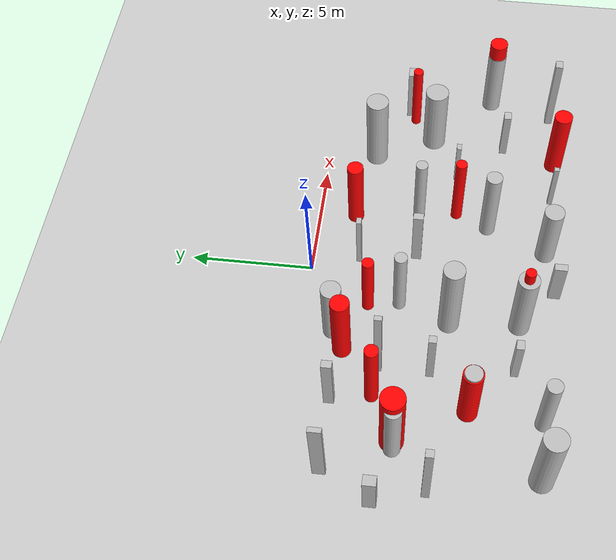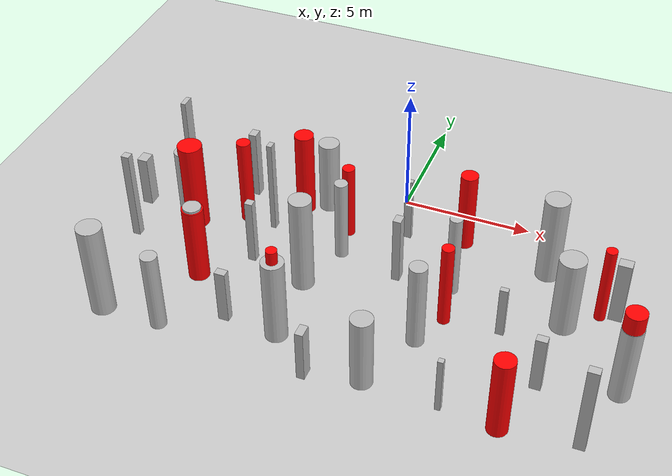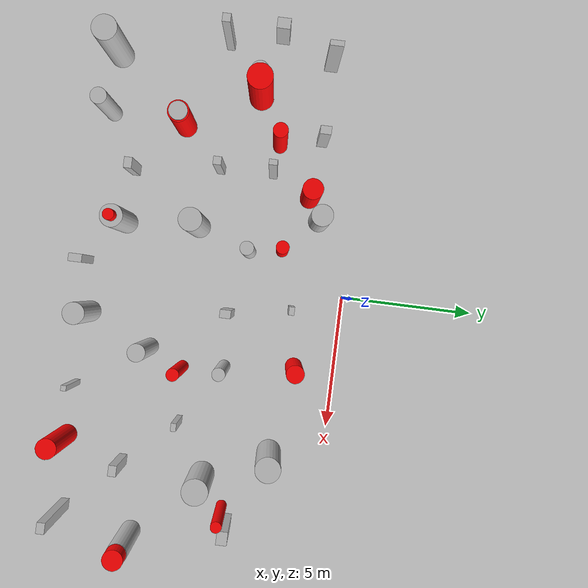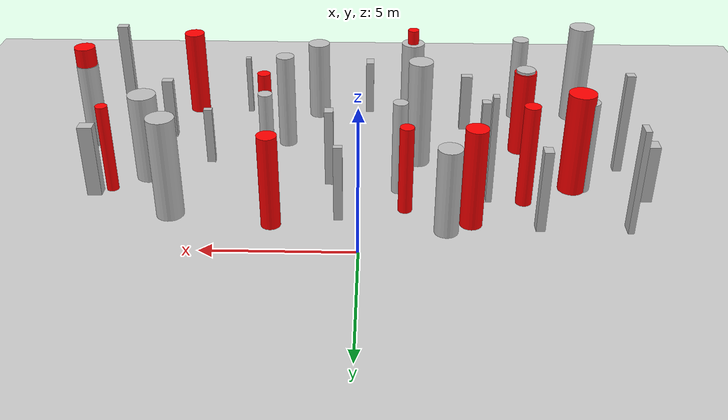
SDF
<sdf version="1.7">
 <world name="default">
  <model name="ground_plane">
   <static>1</static>
   <link name="link">
    <collision name="collision">
     <geometry><plane><normal>0 0 1</normal><size>100 100</size></plane></geometry>
     <surface>
      <contact><collide_bitmask>65535</collide_bitmask></contact>
      <friction><ode><mu>100</mu><mu2>50</mu2></ode></friction>
     </surface>
    </collision>
    <visual name="visual">
     <cast_shadows>0</cast_shadows>
     <geometry><plane><normal>0 0 1</normal><size>100 100</size></plane></geometry>
     <material>
      <script><uri>file://media/materials/scripts/gazebo.material</uri><name>Gazebo/Grey</name></script>
     </material>
    </visual>
   </link>
  </model>
  <model name="dynamic_cylinder_5_0.5_0.5_3.4">
   <static>true</static>
   <pose>3.412757392363188 -5.792348778523182 1.7193007567311602 0 0 0</pose>
   <link name="link">
    <visual name="visual">
     <geometry>
      <cylinder><radius>0.23061344322440844</radius><length>3.4386015134623205</length></cylinder>
     </geometry>
     <material><ambient>1 0 0 1</ambient><diffuse>1 0 0 1</diffuse><specular>0.5 0.5 0.5 1</specular></material>
    </visual>
    <collision name="dynamic_collision">
     <geometry>
      <cylinder><radius>0.23061344322440844</radius><length>3.4386015134623205</length></cylinder>
     </geometry>
     <surface><contact><collide_bitmask>65535</collide_bitmask></contact></surface>
    </collision>
   </link>
   <plugin name="obstacle_motion" filename="libobstaclePathPlugin.so">
    <orientation>false</orientation>
    <loop>0</loop>
    <velocity>0.9883738380592262</velocity>
    <path>
     <waypoint>3.412757392363188 -5.792348778523182 1.7193007567311602</waypoint>
     <waypoint>-3.691432981516323 -2.725784581147548 1.7193007567311602</waypoint>
    </path>
   </plugin>
  </model>
  <model name="dynamic_cylinder_6_0.8_0.8_3.2">
   <static>true</static>
   <pose>-5.822464878103306 -6.773809642300074 1.57948479182276 0 0 0</pose>
   <link name="link">
    <visual name="visual">
     <geometry><cylinder><radius>0.396898876839582</radius><length>3.15896958364552</length></cylinder></geometry>
     <material><ambient>1 0 0 1</ambient><diffuse>1 0 0 1</diffuse><specular>0.5 0.5 0.5 1</specular></material>
    </visual>
    <collision name="dynamic_collision">
     <geometry><cylinder><radius>0.396898876839582</radius><length>3.15896958364552</length></cylinder></geometry>
     <surface><contact><collide_bitmask>65535</collide_bitmask></contact></surface>
    </collision>
   </link>
   <plugin name="obstacle_motion" filename="libobstaclePathPlugin.so">
    <orientation>false</orientation>
    <loop>0</loop>
    <velocity>0.11037514116430513</velocity>
    <path>
     <waypoint>-5.822464878103306 -6.773809642300074 1.57948479182276</waypoint>
     <waypoint>-4.934167949204358 -0.6737845428738751 1.57948479182276</waypoint>
    </path>
   </plugin>
  </model>
  <model name="dynamic_cylinder_8_0.7_0.7_3.5">
   <static>true</static>
   <pose>-3.6403364121204795 -1.7147401097066002 1.7616240267333498 0 0 0</pose>
   <link name="link">
    <visual name="visual">
     <geometry>
      <cylinder><radius>0.3727839486668538</radius><length>3.5232480534666997</length></cylinder>
     </geometry>
     <material><ambient>1 0 0 1</ambient><diffuse>1 0 0 1</diffuse><specular>0.5 0.5 0.5 1</specular></material>
    </visual>
    <collision name="dynamic_collision">
     <geometry>
      <cylinder><radius>0.3727839486668538</radius><length>3.5232480534666997</length></cylinder>
     </geometry>
     <surface><contact><collide_bitmask>65535</collide_bitmask></contact></surface>
    </collision>
   </link>
   <plugin name="obstacle_motion" filename="libobstaclePathPlugin.so">
    <orientation>false</orientation>
    <loop>0</loop>
    <velocity>0.09394051075844168</velocity>
    <path>
     <waypoint>-3.6403364121204795 -1.7147401097066002 1.7616240267333498</waypoint>
     <waypoint>3.849442387400398 1.3320290841315021 1.7616240267333498</waypoint>
    </path>
   </plugin>
  </model>
  <model name="dynamic_cylinder_9_0.4_0.4_3.2">
   <static>true</static>
   <pose>8.585923951524283 -3.628620950973527 1.5915956810035583 0 0 0</pose>
   <link name="link">
    <visual name="visual">
     <geometry>
      <cylinder><radius>0.20603226385624807</radius><length>3.1831913620071166</length></cylinder>
     </geometry>
     <material><ambient>1 0 0 1</ambient><diffuse>1 0 0 1</diffuse><specular>0.5 0.5 0.5 1</specular></material>
    </visual>
    <collision name="dynamic_collision">
     <geometry>
      <cylinder><radius>0.20603226385624807</radius><length>3.1831913620071166</length></cylinder>
     </geometry>
     <surface><contact><collide_bitmask>65535</collide_bitmask></contact></surface>
    </collision>
   </link>
   <plugin name="obstacle_motion" filename="libobstaclePathPlugin.so">
    <orientation>false</orientation>
    <loop>0</loop>
    <velocity>0.5865129348100832</velocity>
    <path>
     <waypoint>8.585923951524283 -3.628620950973527 1.5915956810035583</waypoint>
     <waypoint>-7.364042751912157 4.32654408237131 1.5915956810035583</waypoint>
    </path>
   </plugin>
  </model>
  <model name="dynamic_cylinder_10_0.8_0.8_3.2">
   <static>true</static>
   <pose>6.578800584347263 -9.906090476149059 1.624376571759979 0 0 0</pose>
   <link name="link">
    <visual name="visual">
     <geometry>
      <cylinder><radius>0.3776125793815517</radius><length>3.248753143519958</length></cylinder>
     </geometry>
     <material><ambient>1 0 0 1</ambient><diffuse>1 0 0 1</diffuse><specular>0.5 0.5 0.5 1</specular></material>
    </visual>
    <collision name="dynamic_collision">
     <geometry>
      <cylinder><radius>0.3776125793815517</radius><length>3.248753143519958</length></cylinder>
     </geometry>
     <surface><contact><collide_bitmask>65535</collide_bitmask></contact></surface>
    </collision>
   </link>
   <plugin name="obstacle_motion" filename="libobstaclePathPlugin.so">
    <orientation>false</orientation>
    <loop>0</loop>
    <velocity>0.5761573344178369</velocity>
    <path>
     <waypoint>6.578800584347263 -9.906090476149059 1.624376571759979</waypoint>
     <waypoint>-4.599840536156703 4.703880442451897 1.624376571759979</waypoint>
    </path>
   </plugin>
  </model>
  <model name="dynamic_cylinder_11_0.7_0.7_3.3">
   <static>true</static>
   <pose>2.8798039845927477 -1.522899028836406 1.645038803605222 0 0 0</pose>
   <link name="link">
    <visual name="visual">
     <geometry>
      <cylinder><radius>0.32863061028372986</radius><length>3.290077607210444</length></cylinder>
     </geometry>
     <material><ambient>1 0 0 1</ambient><diffuse>1 0 0 1</diffuse><specular>0.5 0.5 0.5 1</specular></material>
    </visual>
    <collision name="dynamic_collision">
     <geometry>
      <cylinder><radius>0.32863061028372986</radius><length>3.290077607210444</length></cylinder>
     </geometry>
     <surface><contact><collide_bitmask>65535</collide_bitmask></contact></surface>
    </collision>
   </link>
   <plugin name="obstacle_motion" filename="libobstaclePathPlugin.so">
    <orientation>false</orientation>
    <loop>0</loop>
    <velocity>0.6180154289988415</velocity>
    <path>
     <waypoint>2.8798039845927477 -1.522899028836406 1.645038803605222</waypoint>
     <waypoint>-9.61613603381333 -3.9685036665090134 1.645038803605222</waypoint>
    </path>
   </plugin>
  </model>
  <model name="dynamic_cylinder_12_0.9_0.9_3.7">
   <static>true</static>
   <pose>-7.290518715550995 -4.034353480879385 1.8260516350008444 0 0 0</pose>
   <link name="link">
    <visual name="visual">
     <geometry>
      <cylinder><radius>0.4689639787553189</radius><length>3.652103270001689</length></cylinder>
     </geometry>
     <material><ambient>1 0 0 1</ambient><diffuse>1 0 0 1</diffuse><specular>0.5 0.5 0.5 1</specular></material>
    </visual>
    <collision name="dynamic_collision">
     <geometry>
      <cylinder><radius>0.4689639787553189</radius><length>3.652103270001689</length></cylinder>
     </geometry>
     <surface><contact><collide_bitmask>65535</collide_bitmask></contact></surface>
    </collision>
   </link>
   <plugin name="obstacle_motion" filename="libobstaclePathPlugin.so">
    <orientation>false</orientation>
    <loop>0</loop>
    <velocity>0.43141843543397396</velocity>
    <path>
     <waypoint>-7.290518715550995 -4.034353480879385 1.8260516350008444</waypoint>
     <waypoint>1.8174552249634637 1.4865049769915757 1.8260516350008444</waypoint>
    </path>
   </plugin>
  </model>
  <model name="dynamic_cylinder_13_0.7_0.7_3.8">
   <static>true</static>
   <pose>9.976940131357331 -7.011033906840125 1.924004114661117 0 0 0</pose>
   <link name="link">
    <visual name="visual">
     <geometry>
      <cylinder><radius>0.37073022158437796</radius><length>3.848008229322234</length></cylinder>
     </geometry>
     <material><ambient>1 0 0 1</ambient><diffuse>1 0 0 1</diffuse><specular>0.5 0.5 0.5 1</specular></material>
    </visual>
    <collision name="dynamic_collision">
     <geometry>
      <cylinder><radius>0.37073022158437796</radius><length>3.848008229322234</length></cylinder>
     </geometry>
     <surface><contact><collide_bitmask>65535</collide_bitmask></contact></surface>
    </collision>
   </link>
   <plugin name="obstacle_motion" filename="libobstaclePathPlugin.so">
    <orientation>false</orientation>
    <loop>0</loop>
    <velocity>0.8073189587250107</velocity>
    <path>
     <waypoint>9.976940131357331 -7.011033906840125 1.924004114661117</waypoint>
     <waypoint>-6.7501413064725035 2.311191285676884 1.924004114661117</waypoint>
    </path>
   </plugin>
  </model>
  <model name="dynamic_cylinder_14_0.4_0.4_4.0">
   <static>true</static>
   <pose>-1.8563340554800067 -8.61666009089724 1.987760752501443 0 0 0</pose>
   <link name="link">
    <visual name="visual">
     <geometry>
      <cylinder><radius>0.2035142252555006</radius><length>3.975521505002886</length></cylinder>
     </geometry>
     <material><ambient>1 0 0 1</ambient><diffuse>1 0 0 1</diffuse><specular>0.5 0.5 0.5 1</specular></material>
    </visual>
    <collision name="dynamic_collision">
     <geometry>
      <cylinder><radius>0.2035142252555006</radius><length>3.975521505002886</length></cylinder>
     </geometry>
     <surface><contact><collide_bitmask>65535</collide_bitmask></contact></surface>
    </collision>
   </link>
   <plugin name="obstacle_motion" filename="libobstaclePathPlugin.so">
    <orientation>false</orientation>
    <loop>0</loop>
    <velocity>0.855803342392611</velocity>
    <path>
     <waypoint>-1.8563340554800067 -8.61666009089724 1.987760752501443</waypoint>
     <waypoint>-0.9291463464386229 4.441111989406959 1.987760752501443</waypoint>
    </path>
   </plugin>
  </model>
  <model name="dynamic_cylinder_15_0.5_0.5_3.6">
   <static>true</static>
   <pose>-5.521506238792398 -3.0929663860619456 1.8107392007498817 0 0 0</pose>
   <link name="link">
    <visual name="visual">
     <geometry>
      <cylinder><radius>0.27136784641235256</radius><length>3.6214784014997634</length></cylinder>
     </geometry>
     <material><ambient>1 0 0 1</ambient><diffuse>1 0 0 1</diffuse><specular>0.5 0.5 0.5 1</specular></material>
    </visual>
    <collision name="dynamic_collision">
     <geometry>
      <cylinder><radius>0.27136784641235256</radius><length>3.6214784014997634</length></cylinder>
     </geometry>
     <surface><contact><collide_bitmask>65535</collide_bitmask></contact></surface>
    </collision>
   </link>
   <plugin name="obstacle_motion" filename="libobstaclePathPlugin.so">
    <orientation>false</orientation>
    <loop>0</loop>
    <velocity>0.5772285886041676</velocity>
    <path>
     <waypoint>-5.521506238792398 -3.0929663860619456 1.8107392007498817</waypoint>
     <waypoint>4.088288038470655 -9.363221409373843 1.8107392007498817</waypoint>
    </path>
   </plugin>
  </model>
  <model name="dynamic_cylinder_19_0.5_0.5_3.1">
   <static>true</static>
   <pose>-1.5062906249698749 -2.516600393315489 1.5587659279810167 0 0 0</pose>
   <link name="link">
    <visual name="visual">
     <geometry>
      <cylinder><radius>0.239620431903546</radius><length>3.1175318559620333</length></cylinder>
     </geometry>
     <material><ambient>1 0 0 1</ambient><diffuse>1 0 0 1</diffuse><specular>0.5 0.5 0.5 1</specular></material>
    </visual>
    <collision name="dynamic_collision">
     <geometry>
      <cylinder><radius>0.239620431903546</radius><length>3.1175318559620333</length></cylinder>
     </geometry>
     <surface><contact><collide_bitmask>65535</collide_bitmask></contact></surface>
    </collision>
   </link>
   <plugin name="obstacle_motion" filename="libobstaclePathPlugin.so">
    <orientation>false</orientation>
    <loop>0</loop>
    <velocity>0.5173791071541142</velocity>
    <path>
     <waypoint>-1.5062906249698749 -2.516600393315489 1.5587659279810167</waypoint>
     <waypoint>-4.447425874105361 1.735686929163375 1.5587659279810167</waypoint>
    </path>
   </plugin>
  </model>
  <model name="cylinder_8_0.8_0.8_3.1">
   <static>true</static>
   <pose>-2.80984198852428 -1.259360924013171 1.530112735814635 0 0 0</pose>
   <link name="link">
    <visual name="visual">
     <geometry><cylinder><radius>0.4000300146337003</radius><length>3.06022547162927</length></cylinder></geometry>
     <material>
      <ambient>0.75 0.75 0.75 1</ambient>
      <diffuse>0.75 0.75 0.75 1</diffuse>
      <specular>0.2 0.2 0.2 1</specular>
     </material>
    </visual>
    <collision name="static_collision">
     <geometry><cylinder><radius>0.4000300146337003</radius><length>3.06022547162927</length></cylinder></geometry>
     <surface><contact><collide_bitmask>65535</collide_bitmask></contact></surface>
    </collision>
   </link>
  </model>
  <model name="cylinder_10_0.7_0.7_3.3">
   <static>true</static>
   <pose>-5.822464878103306 -6.773809642300074 1.626645801269891 0 0 0</pose>
   <link name="link">
    <visual name="visual">
     <geometry>
      <cylinder><radius>0.3398932318568919</radius><length>3.253291602539782</length></cylinder>
     </geometry>
     <material>
      <ambient>0.75 0.75 0.75 1</ambient>
      <diffuse>0.75 0.75 0.75 1</diffuse>
      <specular>0.2 0.2 0.2 1</specular>
     </material>
    </visual>
    <collision name="static_collision">
     <geometry>
      <cylinder><radius>0.3398932318568919</radius><length>3.253291602539782</length></cylinder>
     </geometry>
     <surface><contact><collide_bitmask>65535</collide_bitmask></contact></surface>
    </collision>
   </link>
  </model>
  <model name="cylinder_16_0.8_0.8_3.0">
   <static>true</static>
   <pose>1.7302586962016626 -9.597849076250128 1.5023477380962735 0 0 0</pose>
   <link name="link">
    <visual name="visual">
     <geometry>
      <cylinder><radius>0.4033449610388691</radius><length>3.004695476192547</length></cylinder>
     </geometry>
     <material>
      <ambient>0.75 0.75 0.75 1</ambient>
      <diffuse>0.75 0.75 0.75 1</diffuse>
      <specular>0.2 0.2 0.2 1</specular>
     </material>
    </visual>
    <collision name="static_collision">
     <geometry>
      <cylinder><radius>0.4033449610388691</radius><length>3.004695476192547</length></cylinder>
     </geometry>
     <surface><contact><collide_bitmask>65535</collide_bitmask></contact></surface>
    </collision>
   </link>
  </model>
  <model name="cylinder_18_0.9_0.9_3.6">
   <static>true</static>
   <pose>6.275956394049544 -2.0698851830603076 1.7906364363179295 0 0 0</pose>
   <link name="link">
    <visual name="visual">
     <geometry>
      <cylinder><radius>0.4645206085564558</radius><length>3.581272872635859</length></cylinder>
     </geometry>
     <material>
      <ambient>0.75 0.75 0.75 1</ambient>
      <diffuse>0.75 0.75 0.75 1</diffuse>
      <specular>0.2 0.2 0.2 1</specular>
     </material>
    </visual>
    <collision name="static_collision">
     <geometry>
      <cylinder><radius>0.4645206085564558</radius><length>3.581272872635859</length></cylinder>
     </geometry>
     <surface><contact><collide_bitmask>65535</collide_bitmask></contact></surface>
    </collision>
   </link>
  </model>
  <model name="cylinder_20_0.5_0.5_3.4">
   <static>true</static>
   <pose>3.2034707498537003 -4.198447855791119 1.714384350472883 0 0 0</pose>
   <link name="link">
    <visual name="visual">
     <geometry>
      <cylinder><radius>0.24064221926673507</radius><length>3.428768700945766</length></cylinder>
     </geometry>
     <material>
      <ambient>0.75 0.75 0.75 1</ambient>
      <diffuse>0.75 0.75 0.75 1</diffuse>
      <specular>0.2 0.2 0.2 1</specular>
     </material>
    </visual>
    <collision name="static_collision">
     <geometry>
      <cylinder><radius>0.24064221926673507</radius><length>3.428768700945766</length></cylinder>
     </geometry>
     <surface><contact><collide_bitmask>65535</collide_bitmask></contact></surface>
    </collision>
   </link>
  </model>
  <model name="cylinder_22_0.8_0.8_3.5">
   <static>true</static>
   <pose>-1.8563340554800067 -8.61666009089724 1.7267713413390344 0 0 0</pose>
   <link name="link">
    <visual name="visual">
     <geometry>
      <cylinder><radius>0.4166166798411044</radius><length>3.453542682678069</length></cylinder>
     </geometry>
     <material>
      <ambient>0.75 0.75 0.75 1</ambient>
      <diffuse>0.75 0.75 0.75 1</diffuse>
      <specular>0.2 0.2 0.2 1</specular>
     </material>
    </visual>
    <collision name="static_collision">
     <geometry>
      <cylinder><radius>0.4166166798411044</radius><length>3.453542682678069</length></cylinder>
     </geometry>
     <surface><contact><collide_bitmask>65535</collide_bitmask></contact></surface>
    </collision>
   </link>
  </model>
  <model name="cylinder_24_0.6_0.6_3.2">
   <static>true</static>
   <pose>-6.000069502071998 -9.62956411078772 1.61196234403019 0 0 0</pose>
   <link name="link">
    <visual name="visual">
     <geometry>
      <cylinder><radius>0.30360550420907084</radius><length>3.22392468806038</length></cylinder>
     </geometry>
     <material>
      <ambient>0.75 0.75 0.75 1</ambient>
      <diffuse>0.75 0.75 0.75 1</diffuse>
      <specular>0.2 0.2 0.2 1</specular>
     </material>
    </visual>
    <collision name="static_collision">
     <geometry>
      <cylinder><radius>0.30360550420907084</radius><length>3.22392468806038</length></cylinder>
     </geometry>
     <surface><contact><collide_bitmask>65535</collide_bitmask></contact></surface>
    </collision>
   </link>
  </model>
  <model name="cylinder_26_0.8_0.8_3.9">
   <static>true</static>
   <pose>-2.035578755678163 -5.803125020497557 1.9721861949919668 0 0 0</pose>
   <link name="link">
    <visual name="visual">
     <geometry>
      <cylinder><radius>0.4218652385147863</radius><length>3.9443723899839336</length></cylinder>
     </geometry>
     <material>
      <ambient>0.75 0.75 0.75 1</ambient>
      <diffuse>0.75 0.75 0.75 1</diffuse>
      <specular>0.2 0.2 0.2 1</specular>
     </material>
    </visual>
    <collision name="static_collision">
     <geometry>
      <cylinder><radius>0.4218652385147863</radius><length>3.9443723899839336</length></cylinder>
     </geometry>
     <surface><contact><collide_bitmask>65535</collide_bitmask></contact></surface>
    </collision>
   </link>
  </model>
  <model name="box_0_0.3_0.4_2.9">
   <static>true</static>
   <pose>-5.850598491177812 -1.5062906249698749 1.4635754243648107 0 0 0</pose>
   <link name="link">
    <visual name="visual">
     <geometry><box><size>0.3 0.4 2.9</size></box></geometry>
     <material>
      <ambient>0.75 0.75 0.75 1</ambient>
      <diffuse>0.75 0.75 0.75 1</diffuse>
      <specular>0.2 0.2 0.2 1</specular>
     </material>
    </visual>
    <collision name="static_collision">
     <geometry><box><size>0.3 0.4 2.9</size></box></geometry>
     <surface><contact><collide_bitmask>65535</collide_bitmask></contact></surface>
    </collision>
   </link>
  </model>
  <model name="box_6_0.2_0.5_3.7">
   <static>true</static>
   <pose>-8.745740959533086 -1.5193549622031615 1.849038308428511 0 0 0</pose>
   <link name="link">
    <visual name="visual">
     <geometry><box><size>0.2 0.5 3.7</size></box></geometry>
     <material>
      <ambient>0.75 0.75 0.75 1</ambient>
      <diffuse>0.75 0.75 0.75 1</diffuse>
      <specular>0.2 0.2 0.2 1</specular>
     </material>
    </visual>
    <collision name="static_collision">
     <geometry><box><size>0.2 0.5 3.7</size></box></geometry>
     <surface><contact><collide_bitmask>65535</collide_bitmask></contact></surface>
    </collision>
   </link>
  </model>
  <model name="box_12_0.3_0.3_2.7">
   <static>true</static>
   <pose>-4.320000464757978 -5.23173438151884 1.3679275805370414 0 0 0</pose>
   <link name="link">
    <visual name="visual">
     <geometry><box><size>0.3 0.3 2.7</size></box></geometry>
     <material>
      <ambient>0.75 0.75 0.75 1</ambient>
      <diffuse>0.75 0.75 0.75 1</diffuse>
      <specular>0.2 0.2 0.2 1</specular>
     </material>
    </visual>
    <collision name="static_collision">
     <geometry><box><size>0.3 0.3 2.7</size></box></geometry>
     <surface><contact><collide_bitmask>65535</collide_bitmask></contact></surface>
    </collision>
   </link>
  </model>
  <model name="box_20_0.4_0.3_2.2">
   <static>true</static>
   <pose>-3.916026168011843 -8.492818618333192 1.107617705149582 0 0 0</pose>
   <link name="link">
    <visual name="visual">
     <geometry><box><size>0.4 0.3 2.2</size></box></geometry>
     <material>
      <ambient>0.75 0.75 0.75 1</ambient>
      <diffuse>0.75 0.75 0.75 1</diffuse>
      <specular>0.2 0.2 0.2 1</specular>
     </material>
    </visual>
    <collision name="static_collision">
     <geometry><box><size>0.4 0.3 2.2</size></box></geometry>
     <surface><contact><collide_bitmask>65535</collide_bitmask></contact></surface>
    </collision>
   </link>
  </model>
  <model name="box_22_0.2_0.3_3.9">
   <static>true</static>
   <pose>-4.343262956478342 -3.207379116676017 1.96319729526038 0 0 0</pose>
   <link name="link">
    <visual name="visual">
     <geometry><box><size>0.2 0.3 3.9</size></box></geometry>
     <material>
      <ambient>0.75 0.75 0.75 1</ambient>
      <diffuse>0.75 0.75 0.75 1</diffuse>
      <specular>0.2 0.2 0.2 1</specular>
     </material>
    </visual>
    <collision name="static_collision">
     <geometry><box><size>0.2 0.3 3.9</size></box></geometry>
     <surface><contact><collide_bitmask>65535</collide_bitmask></contact></surface>
    </collision>
   </link>
  </model>
  <model name="box_28_0.3_0.3_3.7">
   <static>true</static>
   <pose>-9.152719058171135 -5.44518013305427 1.8369903652886839 0 0 0</pose>
   <link name="link">
    <visual name="visual">
     <geometry><box><size>0.3 0.3 3.7</size></box></geometry>
     <material>
      <ambient>0.75 0.75 0.75 1</ambient>
      <diffuse>0.75 0.75 0.75 1</diffuse>
      <specular>0.2 0.2 0.2 1</specular>
     </material>
    </visual>
    <collision name="static_collision">
     <geometry><box><size>0.3 0.3 3.7</size></box></geometry>
     <surface><contact><collide_bitmask>65535</collide_bitmask></contact></surface>
    </collision>
   </link>
  </model>
  <model name="cylinder_3_0.9_0.9_3.8">
   <static>true</static>
   <pose>-8.257414005969185 -9.595632051193485 1.8890783754749252 0 0 0</pose>
   <link name="link">
    <visual name="visual">
     <geometry>
      <cylinder><radius>0.46100364447404574</radius><length>3.7781567509498504</length></cylinder>
     </geometry>
     <material>
      <ambient>0.75 0.75 0.75 1</ambient>
      <diffuse>0.75 0.75 0.75 1</diffuse>
      <specular>0.2 0.2 0.2 1</specular>
     </material>
    </visual>
    <collision name="static_collision">
     <geometry>
      <cylinder><radius>0.46100364447404574</radius><length>3.7781567509498504</length></cylinder>
     </geometry>
     <surface><contact><collide_bitmask>65535</collide_bitmask></contact></surface>
    </collision>
   </link>
  </model>
  <model name="cylinder_5_0.6_0.6_3.5">
   <static>true</static>
   <pose>2.798420426550477 -7.132934251819072 1.760924160875036 0 0 0</pose>
   <link name="link">
    <visual name="visual">
     <geometry>
      <cylinder><radius>0.3243985819971571</radius><length>3.521848321750072</length></cylinder>
     </geometry>
     <material>
      <ambient>0.75 0.75 0.75 1</ambient>
      <diffuse>0.75 0.75 0.75 1</diffuse>
      <specular>0.2 0.2 0.2 1</specular>
     </material>
    </visual>
    <collision name="static_collision">
     <geometry>
      <cylinder><radius>0.3243985819971571</radius><length>3.521848321750072</length></cylinder>
     </geometry>
     <surface><contact><collide_bitmask>65535</collide_bitmask></contact></surface>
    </collision>
   </link>
  </model>
  <model name="cylinder_13_0.6_0.6_3.3">
   <static>true</static>
   <pose>-7.596068775736622 -4.077196049557101 1.658991589696988 0 0 0</pose>
   <link name="link">
    <visual name="visual">
     <geometry><cylinder><radius>0.324278898354401</radius><length>3.317983179393976</length></cylinder></geometry>
     <material>
      <ambient>0.75 0.75 0.75 1</ambient>
      <diffuse>0.75 0.75 0.75 1</diffuse>
      <specular>0.2 0.2 0.2 1</specular>
     </material>
    </visual>
    <collision name="static_collision">
     <geometry><cylinder><radius>0.324278898354401</radius><length>3.317983179393976</length></cylinder></geometry>
     <surface><contact><collide_bitmask>65535</collide_bitmask></contact></surface>
    </collision>
   </link>
  </model>
  <model name="cylinder_21_0.8_0.8_3.2">
   <static>true</static>
   <pose>9.976940131357331 -7.011033906840125 1.5812464673381874 0 0 0</pose>
   <link name="link">
    <visual name="visual">
     <geometry>
      <cylinder><radius>0.3846678692851533</radius><length>3.162492934676375</length></cylinder>
     </geometry>
     <material>
      <ambient>0.75 0.75 0.75 1</ambient>
      <diffuse>0.75 0.75 0.75 1</diffuse>
      <specular>0.2 0.2 0.2 1</specular>
     </material>
    </visual>
    <collision name="static_collision">
     <geometry>
      <cylinder><radius>0.3846678692851533</radius><length>3.162492934676375</length></cylinder>
     </geometry>
     <surface><contact><collide_bitmask>65535</collide_bitmask></contact></surface>
    </collision>
   </link>
  </model>
  <model name="cylinder_27_0.5_0.5_3.4">
   <static>true</static>
   <pose>-1.3116674888375854 -3.764082360117948 1.6888759196462404 0 0 0</pose>
   <link name="link">
    <visual name="visual">
     <geometry>
      <cylinder><radius>0.25388110326789043</radius><length>3.377751839292481</length></cylinder>
     </geometry>
     <material>
      <ambient>0.75 0.75 0.75 1</ambient>
      <diffuse>0.75 0.75 0.75 1</diffuse>
      <specular>0.2 0.2 0.2 1</specular>
     </material>
    </visual>
    <collision name="static_collision">
     <geometry>
      <cylinder><radius>0.25388110326789043</radius><length>3.377751839292481</length></cylinder>
     </geometry>
     <surface><contact><collide_bitmask>65535</collide_bitmask></contact></surface>
    </collision>
   </link>
  </model>
  <model name="cylinder_29_1.0_1.0_3.2">
   <static>true</static>
   <pose>7.453013108947907 -4.529159303687285 1.592817972152976 0 0 0</pose>
   <link name="link">
    <visual name="visual">
     <geometry>
      <cylinder><radius>0.48583749709158336</radius><length>3.185635944305952</length></cylinder>
     </geometry>
     <material>
      <ambient>0.75 0.75 0.75 1</ambient>
      <diffuse>0.75 0.75 0.75 1</diffuse>
      <specular>0.2 0.2 0.2 1</specular>
     </material>
    </visual>
    <collision name="static_collision">
     <geometry>
      <cylinder><radius>0.48583749709158336</radius><length>3.185635944305952</length></cylinder>
     </geometry>
     <surface><contact><collide_bitmask>65535</collide_bitmask></contact></surface>
    </collision>
   </link>
  </model>
  <model name="box_1_0.4_0.3_2.3">
   <static>true</static>
   <pose>7.277112118464629 -7.649362880759338 1.1320681063451534 0 0 0</pose>
   <link name="link">
    <visual name="visual">
     <geometry><box><size>0.4 0.3 2.3</size></box></geometry>
     <material>
      <ambient>0.75 0.75 0.75 1</ambient>
      <diffuse>0.75 0.75 0.75 1</diffuse>
      <specular>0.2 0.2 0.2 1</specular>
     </material>
    </visual>
    <collision name="static_collision">
     <geometry><box><size>0.4 0.3 2.3</size></box></geometry>
     <surface><contact><collide_bitmask>65535</collide_bitmask></contact></surface>
    </collision>
   </link>
  </model>
  <model name="box_3_0.2_0.2_2.3">
   <static>true</static>
   <pose>4.511887284211575 -9.771450827499379 1.1469466454003752 0 0 0</pose>
   <link name="link">
    <visual name="visual">
     <geometry><box><size>0.2 0.2 2.3</size></box></geometry>
     <material>
      <ambient>0.75 0.75 0.75 1</ambient>
      <diffuse>0.75 0.75 0.75 1</diffuse>
      <specular>0.2 0.2 0.2 1</specular>
     </material>
    </visual>
    <collision name="static_collision">
     <geometry><box><size>0.2 0.2 2.3</size></box></geometry>
     <surface><contact><collide_bitmask>65535</collide_bitmask></contact></surface>
    </collision>
   </link>
  </model>
  <model name="box_9_0.3_0.4_2.8">
   <static>true</static>
   <pose>1.09375617322838 -4.258969601607405 1.4148568693335641 0 0 0</pose>
   <link name="link">
    <visual name="visual">
     <geometry><box><size>0.3 0.4 2.8</size></box></geometry>
     <material>
      <ambient>0.75 0.75 0.75 1</ambient>
      <diffuse>0.75 0.75 0.75 1</diffuse>
      <specular>0.2 0.2 0.2 1</specular>
     </material>
    </visual>
    <collision name="static_collision">
     <geometry><box><size>0.3 0.4 2.8</size></box></geometry>
     <surface><contact><collide_bitmask>65535</collide_bitmask></contact></surface>
    </collision>
   </link>
  </model>
  <model name="box_11_0.4_0.3_3.6">
   <static>true</static>
   <pose>9.255406396804847 -9.662566532599206 1.8136786497018633 0 0 0</pose>
   <link name="link">
    <visual name="visual">
     <geometry><box><size>0.4 0.3 3.6</size></box></geometry>
     <material>
      <ambient>0.75 0.75 0.75 1</ambient>
      <diffuse>0.75 0.75 0.75 1</diffuse>
      <specular>0.2 0.2 0.2 1</specular>
     </material>
    </visual>
    <collision name="static_collision">
     <geometry><box><size>0.4 0.3 3.6</size></box></geometry>
     <surface><contact><collide_bitmask>65535</collide_bitmask></contact></surface>
    </collision>
   </link>
  </model>
  <model name="box_17_0.3_0.2_2.7">
   <static>true</static>
   <pose>0.6983370985416784 -1.9151276412148235 1.3650998770600098 0 0 0</pose>
   <link name="link">
    <visual name="visual">
     <geometry><box><size>0.3 0.2 2.7</size></box></geometry>
     <material>
      <ambient>0.75 0.75 0.75 1</ambient>
      <diffuse>0.75 0.75 0.75 1</diffuse>
      <specular>0.2 0.2 0.2 1</specular>
     </material>
    </visual>
    <collision name="static_collision">
     <geometry><box><size>0.3 0.2 2.7</size></box></geometry>
     <surface><contact><collide_bitmask>65535</collide_bitmask></contact></surface>
    </collision>
   </link>
  </model>
  <model name="box_21_0.3_0.5_2.1">
   <static>true</static>
   <pose>-0.24647352923584975 -9.989080702060086 1.0635537748361585 0 0 0</pose>
   <link name="link">
    <visual name="visual">
     <geometry><box><size>0.3 0.5 2.1</size></box></geometry>
     <material>
      <ambient>0.75 0.75 0.75 1</ambient>
      <diffuse>0.75 0.75 0.75 1</diffuse>
      <specular>0.2 0.2 0.2 1</specular>
     </material>
    </visual>
    <collision name="static_collision">
     <geometry><box><size>0.3 0.5 2.1</size></box></geometry>
     <surface><contact><collide_bitmask>65535</collide_bitmask></contact></surface>
    </collision>
   </link>
  </model>
  <model name="box_23_0.3_0.2_2.1">
   <static>true</static>
   <pose>5.4622010501083835 -5.662594998179187 1.042924190608832 0 0 0</pose>
   <link name="link">
    <visual name="visual">
     <geometry><box><size>0.3 0.2 2.1</size></box></geometry>
     <material>
      <ambient>0.75 0.75 0.75 1</ambient>
      <diffuse>0.75 0.75 0.75 1</diffuse>
      <specular>0.2 0.2 0.2 1</specular>
     </material>
    </visual>
    <collision name="static_collision">
     <geometry><box><size>0.3 0.2 2.1</size></box></geometry>
     <surface><contact><collide_bitmask>65535</collide_bitmask></contact></surface>
    </collision>
   </link>
  </model>
  <model name="box_25_0.5_0.4_2.6">
   <static>true</static>
   <pose>9.122463191199198 -3.3911885479431225 1.2808594946322427 0 0 0</pose>
   <link name="link">
    <visual name="visual">
     <geometry><box><size>0.5 0.4 2.6</size></box></geometry>
     <material>
      <ambient>0.75 0.75 0.75 1</ambient>
      <diffuse>0.75 0.75 0.75 1</diffuse>
      <specular>0.2 0.2 0.2 1</specular>
     </material>
    </visual>
    <collision name="static_collision">
     <geometry><box><size>0.5 0.4 2.6</size></box></geometry>
     <surface><contact><collide_bitmask>65535</collide_bitmask></contact></surface>
    </collision>
   </link>
  </model>
  <model name="box_29_0.4_0.5_2.1">
   <static>true</static>
   <pose>-9.68523520659075 -3.482903159924076 1.028362934230075 0 0 0</pose>
   <link name="link">
    <visual name="visual">
     <geometry><box><size>0.4 0.5 2.1</size></box></geometry>
     <material>
      <ambient>0.75 0.75 0.75 1</ambient>
      <diffuse>0.75 0.75 0.75 1</diffuse>
      <specular>0.2 0.2 0.2 1</specular>
     </material>
    </visual>
    <collision name="static_collision">
     <geometry><box><size>0.4 0.5 2.1</size></box></geometry>
     <surface><contact><collide_bitmask>65535</collide_bitmask></contact></surface>
    </collision>
   </link>
  </model>
 </world>
</sdf>
